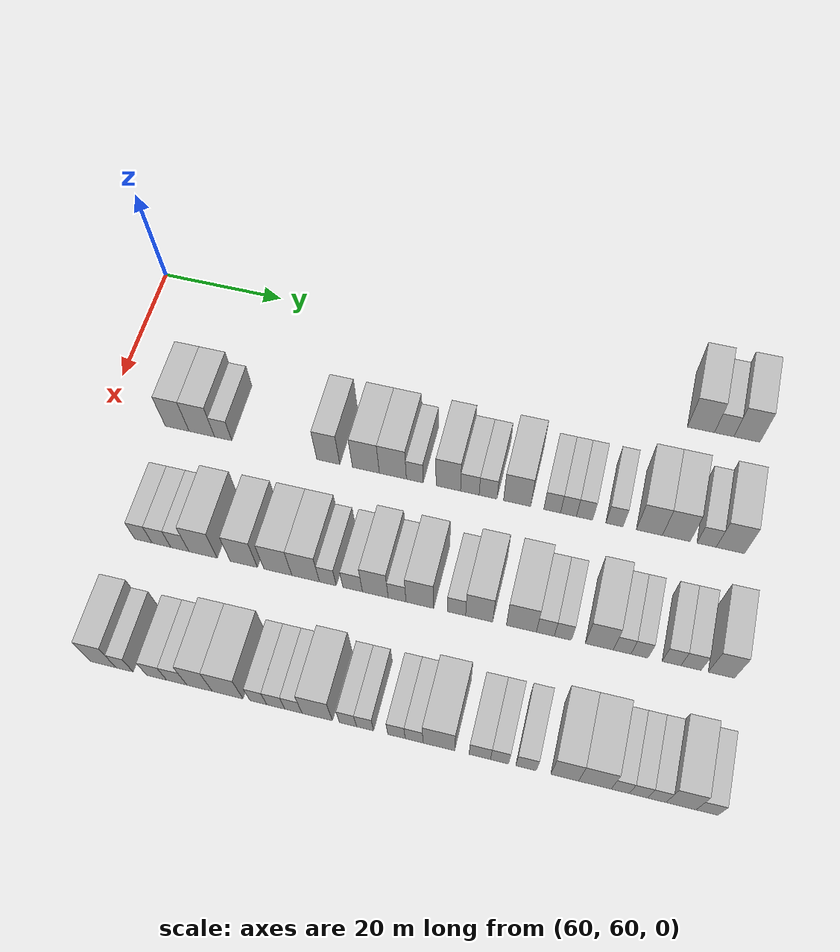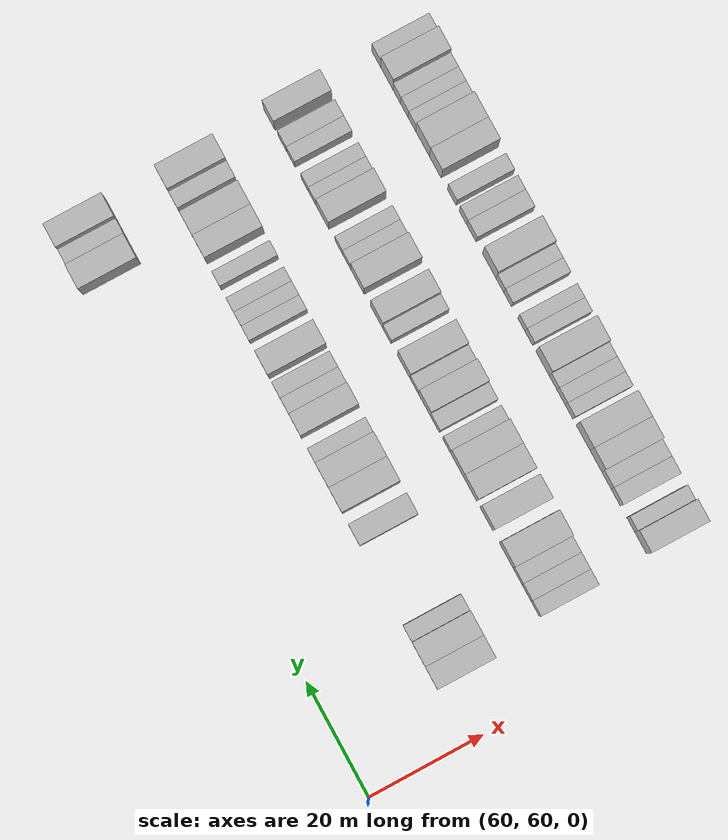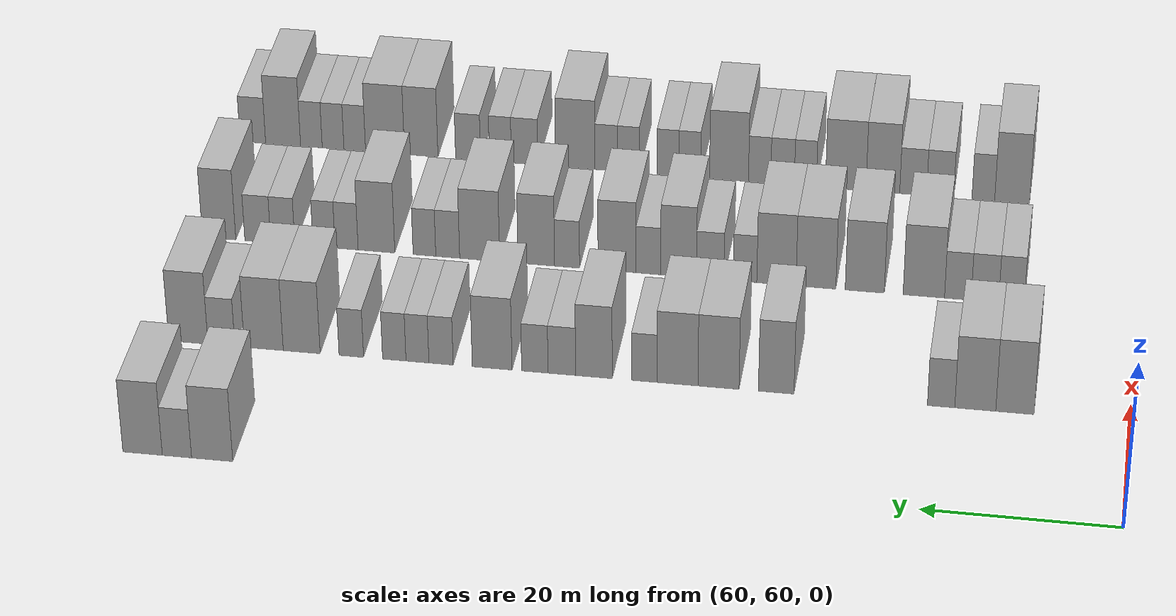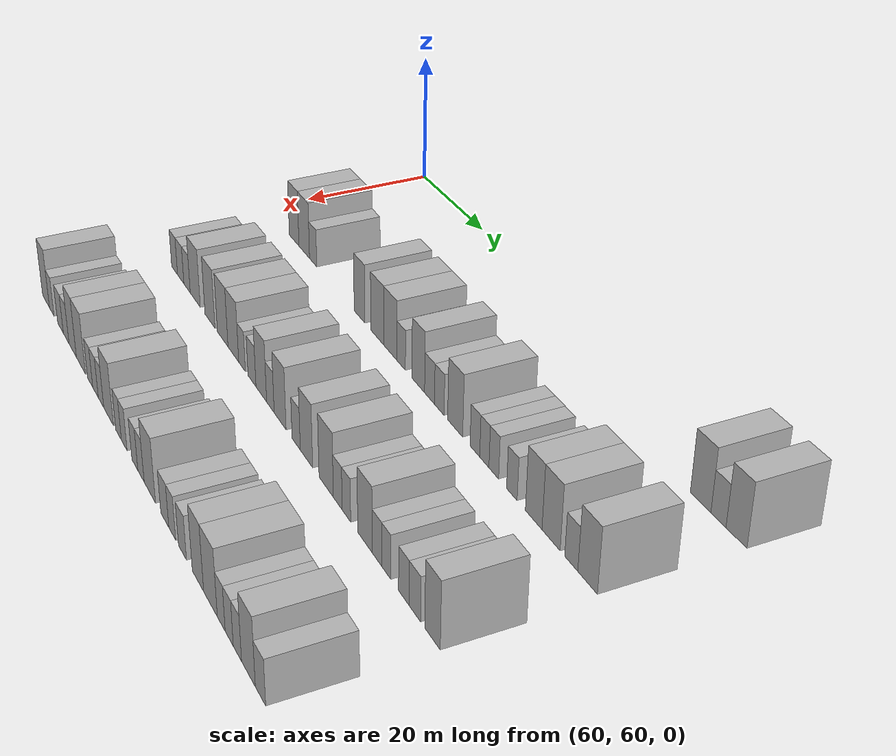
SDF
<sdf version="1.6">
 <world name="default">
  <model name="building_475">
   <static>1</static>
   <pose>63.0000 150.5492 0 0.000000 0.000000 0.000000</pose>
   <link name="link">
    <pose>0 0 4.50 0 0 0</pose>
    <collision name="collision"><geometry><box><size>10.0000 4.2063 9.0000</size></box></geometry></collision>
    <visual name="visual">
     <cast_shadows>0</cast_shadows>
     <geometry><box><size>10.0000 4.2063 9.0000</size></box></geometry>
     <material>
      <script>
       <uri>model://HANNAS_wall/materials/scripts</uri>
       <uri>model://HANNAS_wall/materials/textures</uri>
       <name>vrc/HANNAS_wall</name>
      </script>
     </material>
    </visual>
   </link>
  </model>
  <model name="building_476">
   <static>1</static>
   <pose>63.0000 154.1515 0 0.000000 0.000000 0.000000</pose>
   <link name="link">
    <pose>0 0 3.00 0 0 0</pose>
    <collision name="collision"><geometry><box><size>10.0000 2.9981 6.0000</size></box></geometry></collision>
    <visual name="visual">
     <cast_shadows>0</cast_shadows>
     <geometry><box><size>10.0000 2.9981 6.0000</size></box></geometry>
     <material>
      <script>
       <uri>model://HANNAS_wall/materials/scripts</uri>
       <uri>model://HANNAS_wall/materials/textures</uri>
       <name>vrc/HANNAS_wall</name>
      </script>
     </material>
    </visual>
   </link>
  </model>
  <model name="building_477">
   <static>1</static>
   <pose>63.0000 157.6719 0 0.000000 0.000000 0.000000</pose>
   <link name="link">
    <pose>0 0 4.50 0 0 0</pose>
    <collision name="collision"><geometry><box><size>10.0000 4.0427 9.0000</size></box></geometry></collision>
    <visual name="visual">
     <cast_shadows>0</cast_shadows>
     <geometry><box><size>10.0000 4.0427 9.0000</size></box></geometry>
     <material>
      <script>
       <uri>model://HANNAS_wall/materials/scripts</uri>
       <uri>model://HANNAS_wall/materials/textures</uri>
       <name>vrc/HANNAS_wall</name>
      </script>
     </material>
    </visual>
   </link>
  </model>
  <model name="building_619">
   <static>1</static>
   <pose>82.0000 71.6418 0 0.000000 0.000000 0.000000</pose>
   <link name="link">
    <pose>0 0 4.50 0 0 0</pose>
    <collision name="collision"><geometry><box><size>10.0000 3.8849 9.0000</size></box></geometry></collision>
    <visual name="visual">
     <cast_shadows>0</cast_shadows>
     <geometry><box><size>10.0000 3.8849 9.0000</size></box></geometry>
     <material>
      <script>
       <uri>model://HANNAS_wall/materials/scripts</uri>
       <uri>model://HANNAS_wall/materials/textures</uri>
       <name>vrc/HANNAS_wall</name>
      </script>
     </material>
    </visual>
   </link>
  </model>
  <model name="building_620">
   <static>1</static>
   <pose>82.0000 75.6646 0 0.000000 0.000000 0.000000</pose>
   <link name="link">
    <pose>0 0 4.50 0 0 0</pose>
    <collision name="collision"><geometry><box><size>10.0000 4.1608 9.0000</size></box></geometry></collision>
    <visual name="visual">
     <cast_shadows>0</cast_shadows>
     <geometry><box><size>10.0000 4.1608 9.0000</size></box></geometry>
     <material>
      <script>
       <uri>model://HANNAS_wall/materials/scripts</uri>
       <uri>model://HANNAS_wall/materials/textures</uri>
       <name>vrc/HANNAS_wall</name>
      </script>
     </material>
    </visual>
   </link>
  </model>
  <model name="building_621">
   <static>1</static>
   <pose>82.0000 79.1383 0 0.000000 0.000000 0.000000</pose>
   <link name="link">
    <pose>0 0 3.00 0 0 0</pose>
    <collision name="collision"><geometry><box><size>10.0000 2.7865 6.0000</size></box></geometry></collision>
    <visual name="visual">
     <cast_shadows>0</cast_shadows>
     <geometry><box><size>10.0000 2.7865 6.0000</size></box></geometry>
     <material>
      <script>
       <uri>model://HANNAS_wall/materials/scripts</uri>
       <uri>model://HANNAS_wall/materials/textures</uri>
       <name>vrc/HANNAS_wall</name>
      </script>
     </material>
    </visual>
   </link>
  </model>
  <model name="building_622">
   <static>1</static>
   <pose>82.0000 96.0127 0 0.000000 0.000000 0.000000</pose>
   <link name="link">
    <pose>0 0 4.50 0 0 0</pose>
    <collision name="collision"><geometry><box><size>10.0000 3.6541 9.0000</size></box></geometry></collision>
    <visual name="visual">
     <cast_shadows>0</cast_shadows>
     <geometry><box><size>10.0000 3.6541 9.0000</size></box></geometry>
     <material>
      <script>
       <uri>model://HANNAS_wall/materials/scripts</uri>
       <uri>model://HANNAS_wall/materials/textures</uri>
       <name>vrc/HANNAS_wall</name>
      </script>
     </material>
    </visual>
   </link>
  </model>
  <model name="building_623">
   <static>1</static>
   <pose>82.0000 101.9577 0 0.000000 0.000000 0.000000</pose>
   <link name="link">
    <pose>0 0 4.50 0 0 0</pose>
    <collision name="collision"><geometry><box><size>10.0000 4.2359 9.0000</size></box></geometry></collision>
    <visual name="visual">
     <cast_shadows>0</cast_shadows>
     <geometry><box><size>10.0000 4.2359 9.0000</size></box></geometry>
     <material>
      <script>
       <uri>model://HANNAS_wall/materials/scripts</uri>
       <uri>model://HANNAS_wall/materials/textures</uri>
       <name>vrc/HANNAS_wall</name>
      </script>
     </material>
    </visual>
   </link>
  </model>
  <model name="building_624">
   <static>1</static>
   <pose>82.0000 106.1976 0 0.000000 0.000000 0.000000</pose>
   <link name="link">
    <pose>0 0 4.50 0 0 0</pose>
    <collision name="collision"><geometry><box><size>10.0000 4.2441 9.0000</size></box></geometry></collision>
    <visual name="visual">
     <cast_shadows>0</cast_shadows>
     <geometry><box><size>10.0000 4.2441 9.0000</size></box></geometry>
     <material>
      <script>
       <uri>model://HANNAS_wall/materials/scripts</uri>
       <uri>model://HANNAS_wall/materials/textures</uri>
       <name>vrc/HANNAS_wall</name>
      </script>
     </material>
    </visual>
   </link>
  </model>
  <model name="building_625">
   <static>1</static>
   <pose>82.0000 109.6351 0 0.000000 0.000000 0.000000</pose>
   <link name="link">
    <pose>0 0 3.00 0 0 0</pose>
    <collision name="collision"><geometry><box><size>10.0000 2.6308 6.0000</size></box></geometry></collision>
    <visual name="visual">
     <cast_shadows>0</cast_shadows>
     <geometry><box><size>10.0000 2.6308 6.0000</size></box></geometry>
     <material>
      <script>
       <uri>model://HANNAS_wall/materials/scripts</uri>
       <uri>model://HANNAS_wall/materials/textures</uri>
       <name>vrc/HANNAS_wall</name>
      </script>
     </material>
    </visual>
   </link>
  </model>
  <model name="building_626">
   <static>1</static>
   <pose>82.0000 114.8485 0 0.000000 0.000000 0.000000</pose>
   <link name="link">
    <pose>0 0 4.50 0 0 0</pose>
    <collision name="collision"><geometry><box><size>10.0000 3.7960 9.0000</size></box></geometry></collision>
    <visual name="visual">
     <cast_shadows>0</cast_shadows>
     <geometry><box><size>10.0000 3.7960 9.0000</size></box></geometry>
     <material>
      <script>
       <uri>model://HANNAS_wall/materials/scripts</uri>
       <uri>model://HANNAS_wall/materials/textures</uri>
       <name>vrc/HANNAS_wall</name>
      </script>
     </material>
    </visual>
   </link>
  </model>
  <model name="building_627">
   <static>1</static>
   <pose>82.0000 118.1863 0 0.000000 0.000000 0.000000</pose>
   <link name="link">
    <pose>0 0 3.00 0 0 0</pose>
    <collision name="collision"><geometry><box><size>10.0000 2.8795 6.0000</size></box></geometry></collision>
    <visual name="visual">
     <cast_shadows>0</cast_shadows>
     <geometry><box><size>10.0000 2.8795 6.0000</size></box></geometry>
     <material>
      <script>
       <uri>model://HANNAS_wall/materials/scripts</uri>
       <uri>model://HANNAS_wall/materials/textures</uri>
       <name>vrc/HANNAS_wall</name>
      </script>
     </material>
    </visual>
   </link>
  </model>
  <model name="building_628">
   <static>1</static>
   <pose>82.0000 121.0032 0 0.000000 0.000000 0.000000</pose>
   <link name="link">
    <pose>0 0 3.00 0 0 0</pose>
    <collision name="collision"><geometry><box><size>10.0000 2.7544 6.0000</size></box></geometry></collision>
    <visual name="visual">
     <cast_shadows>0</cast_shadows>
     <geometry><box><size>10.0000 2.7544 6.0000</size></box></geometry>
     <material>
      <script>
       <uri>model://HANNAS_wall/materials/scripts</uri>
       <uri>model://HANNAS_wall/materials/textures</uri>
       <name>vrc/HANNAS_wall</name>
      </script>
     </material>
    </visual>
   </link>
  </model>
  <model name="building_629">
   <static>1</static>
   <pose>82.0000 125.4611 0 0.000000 0.000000 0.000000</pose>
   <link name="link">
    <pose>0 0 4.50 0 0 0</pose>
    <collision name="collision"><geometry><box><size>10.0000 4.1613 9.0000</size></box></geometry></collision>
    <visual name="visual">
     <cast_shadows>0</cast_shadows>
     <geometry><box><size>10.0000 4.1613 9.0000</size></box></geometry>
     <material>
      <script>
       <uri>model://HANNAS_wall/materials/scripts</uri>
       <uri>model://HANNAS_wall/materials/textures</uri>
       <name>vrc/HANNAS_wall</name>
      </script>
     </material>
    </visual>
   </link>
  </model>
  <model name="building_630">
   <static>1</static>
   <pose>82.0000 130.8156 0 0.000000 0.000000 0.000000</pose>
   <link name="link">
    <pose>0 0 3.00 0 0 0</pose>
    <collision name="collision"><geometry><box><size>10.0000 2.5477 6.0000</size></box></geometry></collision>
    <visual name="visual">
     <cast_shadows>0</cast_shadows>
     <geometry><box><size>10.0000 2.5477 6.0000</size></box></geometry>
     <material>
      <script>
       <uri>model://HANNAS_wall/materials/scripts</uri>
       <uri>model://HANNAS_wall/materials/textures</uri>
       <name>vrc/HANNAS_wall</name>
      </script>
     </material>
    </visual>
   </link>
  </model>
  <model name="building_631">
   <static>1</static>
   <pose>82.0000 133.2927 0 0.000000 0.000000 0.000000</pose>
   <link name="link">
    <pose>0 0 3.00 0 0 0</pose>
    <collision name="collision"><geometry><box><size>10.0000 2.4065 6.0000</size></box></geometry></collision>
    <visual name="visual">
     <cast_shadows>0</cast_shadows>
     <geometry><box><size>10.0000 2.4065 6.0000</size></box></geometry>
     <material>
      <script>
       <uri>model://HANNAS_wall/materials/scripts</uri>
       <uri>model://HANNAS_wall/materials/textures</uri>
       <name>vrc/HANNAS_wall</name>
      </script>
     </material>
    </visual>
   </link>
  </model>
  <model name="building_632">
   <static>1</static>
   <pose>82.0000 135.7270 0 0.000000 0.000000 0.000000</pose>
   <link name="link">
    <pose>0 0 3.00 0 0 0</pose>
    <collision name="collision"><geometry><box><size>10.0000 2.4622 6.0000</size></box></geometry></collision>
    <visual name="visual">
     <cast_shadows>0</cast_shadows>
     <geometry><box><size>10.0000 2.4622 6.0000</size></box></geometry>
     <material>
      <script>
       <uri>model://HANNAS_wall/materials/scripts</uri>
       <uri>model://HANNAS_wall/materials/textures</uri>
       <name>vrc/HANNAS_wall</name>
      </script>
     </material>
    </visual>
   </link>
  </model>
  <model name="building_633">
   <static>1</static>
   <pose>82.0000 140.2498 0 0.000000 0.000000 0.000000</pose>
   <link name="link">
    <pose>0 0 3.00 0 0 0</pose>
    <collision name="collision"><geometry><box><size>10.0000 2.5834 6.0000</size></box></geometry></collision>
    <visual name="visual">
     <cast_shadows>0</cast_shadows>
     <geometry><box><size>10.0000 2.5834 6.0000</size></box></geometry>
     <material>
      <script>
       <uri>model://HANNAS_wall/materials/scripts</uri>
       <uri>model://HANNAS_wall/materials/textures</uri>
       <name>vrc/HANNAS_wall</name>
      </script>
     </material>
    </visual>
   </link>
  </model>
  <model name="building_634">
   <static>1</static>
   <pose>82.0000 145.4933 0 0.000000 0.000000 0.000000</pose>
   <link name="link">
    <pose>0 0 4.50 0 0 0</pose>
    <collision name="collision"><geometry><box><size>10.0000 3.9036 9.0000</size></box></geometry></collision>
    <visual name="visual">
     <cast_shadows>0</cast_shadows>
     <geometry><box><size>10.0000 3.9036 9.0000</size></box></geometry>
     <material>
      <script>
       <uri>model://HANNAS_wall/materials/scripts</uri>
       <uri>model://HANNAS_wall/materials/textures</uri>
       <name>vrc/HANNAS_wall</name>
      </script>
     </material>
    </visual>
   </link>
  </model>
  <model name="building_635">
   <static>1</static>
   <pose>82.0000 149.5076 0 0.000000 0.000000 0.000000</pose>
   <link name="link">
    <pose>0 0 4.50 0 0 0</pose>
    <collision name="collision"><geometry><box><size>10.0000 4.1250 9.0000</size></box></geometry></collision>
    <visual name="visual">
     <cast_shadows>0</cast_shadows>
     <geometry><box><size>10.0000 4.1250 9.0000</size></box></geometry>
     <material>
      <script>
       <uri>model://HANNAS_wall/materials/scripts</uri>
       <uri>model://HANNAS_wall/materials/textures</uri>
       <name>vrc/HANNAS_wall</name>
      </script>
     </material>
    </visual>
   </link>
  </model>
  <model name="building_636">
   <static>1</static>
   <pose>82.0000 154.0002 0 0.000000 0.000000 0.000000</pose>
   <link name="link">
    <pose>0 0 3.00 0 0 0</pose>
    <collision name="collision"><geometry><box><size>10.0000 2.8602 6.0000</size></box></geometry></collision>
    <visual name="visual">
     <cast_shadows>0</cast_shadows>
     <geometry><box><size>10.0000 2.8602 6.0000</size></box></geometry>
     <material>
      <script>
       <uri>model://HANNAS_wall/materials/scripts</uri>
       <uri>model://HANNAS_wall/materials/textures</uri>
       <name>vrc/HANNAS_wall</name>
      </script>
     </material>
    </visual>
   </link>
  </model>
  <model name="building_637">
   <static>1</static>
   <pose>82.0000 157.5140 0 0.000000 0.000000 0.000000</pose>
   <link name="link">
    <pose>0 0 4.50 0 0 0</pose>
    <collision name="collision"><geometry><box><size>10.0000 4.1674 9.0000</size></box></geometry></collision>
    <visual name="visual">
     <cast_shadows>0</cast_shadows>
     <geometry><box><size>10.0000 4.1674 9.0000</size></box></geometry>
     <material>
      <script>
       <uri>model://HANNAS_wall/materials/scripts</uri>
       <uri>model://HANNAS_wall/materials/textures</uri>
       <name>vrc/HANNAS_wall</name>
      </script>
     </material>
    </visual>
   </link>
  </model>
  <model name="building_798">
   <static>1</static>
   <pose>101.0000 73.1687 0 0.000000 0.000000 0.000000</pose>
   <link name="link">
    <pose>0 0 3.00 0 0 0</pose>
    <collision name="collision"><geometry><box><size>10.0000 2.6980 6.0000</size></box></geometry></collision>
    <visual name="visual">
     <cast_shadows>0</cast_shadows>
     <geometry><box><size>10.0000 2.6980 6.0000</size></box></geometry>
     <material>
      <script>
       <uri>model://HANNAS_wall/materials/scripts</uri>
       <uri>model://HANNAS_wall/materials/textures</uri>
       <name>vrc/HANNAS_wall</name>
      </script>
     </material>
    </visual>
   </link>
  </model>
  <model name="building_799">
   <static>1</static>
   <pose>101.0000 75.9701 0 0.000000 0.000000 0.000000</pose>
   <link name="link">
    <pose>0 0 3.00 0 0 0</pose>
    <collision name="collision"><geometry><box><size>10.0000 2.9047 6.0000</size></box></geometry></collision>
    <visual name="visual">
     <cast_shadows>0</cast_shadows>
     <geometry><box><size>10.0000 2.9047 6.0000</size></box></geometry>
     <material>
      <script>
       <uri>model://HANNAS_wall/materials/scripts</uri>
       <uri>model://HANNAS_wall/materials/textures</uri>
       <name>vrc/HANNAS_wall</name>
      </script>
     </material>
    </visual>
   </link>
  </model>
  <model name="building_800">
   <static>1</static>
   <pose>101.0000 78.8299 0 0.000000 0.000000 0.000000</pose>
   <link name="link">
    <pose>0 0 3.00 0 0 0</pose>
    <collision name="collision"><geometry><box><size>10.0000 2.8150 6.0000</size></box></geometry></collision>
    <visual name="visual">
     <cast_shadows>0</cast_shadows>
     <geometry><box><size>10.0000 2.8150 6.0000</size></box></geometry>
     <material>
      <script>
       <uri>model://HANNAS_wall/materials/scripts</uri>
       <uri>model://HANNAS_wall/materials/textures</uri>
       <name>vrc/HANNAS_wall</name>
      </script>
     </material>
    </visual>
   </link>
  </model>
  <model name="building_801">
   <static>1</static>
   <pose>101.0000 82.4284 0 0.000000 0.000000 0.000000</pose>
   <link name="link">
    <pose>0 0 4.50 0 0 0</pose>
    <collision name="collision"><geometry><box><size>10.0000 4.3820 9.0000</size></box></geometry></collision>
    <visual name="visual">
     <cast_shadows>0</cast_shadows>
     <geometry><box><size>10.0000 4.3820 9.0000</size></box></geometry>
     <material>
      <script>
       <uri>model://HANNAS_wall/materials/scripts</uri>
       <uri>model://HANNAS_wall/materials/textures</uri>
       <name>vrc/HANNAS_wall</name>
      </script>
     </material>
    </visual>
   </link>
  </model>
  <model name="building_802">
   <static>1</static>
   <pose>101.0000 88.6964 0 0.000000 0.000000 0.000000</pose>
   <link name="link">
    <pose>0 0 4.50 0 0 0</pose>
    <collision name="collision"><geometry><box><size>10.0000 4.1540 9.0000</size></box></geometry></collision>
    <visual name="visual">
     <cast_shadows>0</cast_shadows>
     <geometry><box><size>10.0000 4.1540 9.0000</size></box></geometry>
     <material>
      <script>
       <uri>model://HANNAS_wall/materials/scripts</uri>
       <uri>model://HANNAS_wall/materials/textures</uri>
       <name>vrc/HANNAS_wall</name>
      </script>
     </material>
    </visual>
   </link>
  </model>
  <model name="building_803">
   <static>1</static>
   <pose>101.0000 93.8994 0 0.000000 0.000000 0.000000</pose>
   <link name="link">
    <pose>0 0 4.50 0 0 0</pose>
    <collision name="collision"><geometry><box><size>10.0000 4.2519 9.0000</size></box></geometry></collision>
    <visual name="visual">
     <cast_shadows>0</cast_shadows>
     <geometry><box><size>10.0000 4.2519 9.0000</size></box></geometry>
     <material>
      <script>
       <uri>model://HANNAS_wall/materials/scripts</uri>
       <uri>model://HANNAS_wall/materials/textures</uri>
       <name>vrc/HANNAS_wall</name>
      </script>
     </material>
    </visual>
   </link>
  </model>
  <model name="building_804">
   <static>1</static>
   <pose>101.0000 98.1186 0 0.000000 0.000000 0.000000</pose>
   <link name="link">
    <pose>0 0 4.50 0 0 0</pose>
    <collision name="collision"><geometry><box><size>10.0000 4.1866 9.0000</size></box></geometry></collision>
    <visual name="visual">
     <cast_shadows>0</cast_shadows>
     <geometry><box><size>10.0000 4.1866 9.0000</size></box></geometry>
     <material>
      <script>
       <uri>model://HANNAS_wall/materials/scripts</uri>
       <uri>model://HANNAS_wall/materials/textures</uri>
       <name>vrc/HANNAS_wall</name>
      </script>
     </material>
    </visual>
   </link>
  </model>
  <model name="building_805">
   <static>1</static>
   <pose>101.0000 101.4747 0 0.000000 0.000000 0.000000</pose>
   <link name="link">
    <pose>0 0 3.00 0 0 0</pose>
    <collision name="collision"><geometry><box><size>10.0000 2.5256 6.0000</size></box></geometry></collision>
    <visual name="visual">
     <cast_shadows>0</cast_shadows>
     <geometry><box><size>10.0000 2.5256 6.0000</size></box></geometry>
     <material>
      <script>
       <uri>model://HANNAS_wall/materials/scripts</uri>
       <uri>model://HANNAS_wall/materials/textures</uri>
       <name>vrc/HANNAS_wall</name>
      </script>
     </material>
    </visual>
   </link>
  </model>
  <model name="building_806">
   <static>1</static>
   <pose>101.0000 105.2041 0 0.000000 0.000000 0.000000</pose>
   <link name="link">
    <pose>0 0 3.00 0 0 0</pose>
    <collision name="collision"><geometry><box><size>10.0000 2.9330 6.0000</size></box></geometry></collision>
    <visual name="visual">
     <cast_shadows>0</cast_shadows>
     <geometry><box><size>10.0000 2.9330 6.0000</size></box></geometry>
     <material>
      <script>
       <uri>model://HANNAS_wall/materials/scripts</uri>
       <uri>model://HANNAS_wall/materials/textures</uri>
       <name>vrc/HANNAS_wall</name>
      </script>
     </material>
    </visual>
   </link>
  </model>
  <model name="building_807">
   <static>1</static>
   <pose>101.0000 108.5928 0 0.000000 0.000000 0.000000</pose>
   <link name="link">
    <pose>0 0 4.50 0 0 0</pose>
    <collision name="collision"><geometry><box><size>10.0000 3.8444 9.0000</size></box></geometry></collision>
    <visual name="visual">
     <cast_shadows>0</cast_shadows>
     <geometry><box><size>10.0000 3.8444 9.0000</size></box></geometry>
     <material>
      <script>
       <uri>model://HANNAS_wall/materials/scripts</uri>
       <uri>model://HANNAS_wall/materials/textures</uri>
       <name>vrc/HANNAS_wall</name>
      </script>
     </material>
    </visual>
   </link>
  </model>
  <model name="building_808">
   <static>1</static>
   <pose>101.0000 111.8437 0 0.000000 0.000000 0.000000</pose>
   <link name="link">
    <pose>0 0 3.00 0 0 0</pose>
    <collision name="collision"><geometry><box><size>10.0000 2.6576 6.0000</size></box></geometry></collision>
    <visual name="visual">
     <cast_shadows>0</cast_shadows>
     <geometry><box><size>10.0000 2.6576 6.0000</size></box></geometry>
     <material>
      <script>
       <uri>model://HANNAS_wall/materials/scripts</uri>
       <uri>model://HANNAS_wall/materials/textures</uri>
       <name>vrc/HANNAS_wall</name>
      </script>
     </material>
    </visual>
   </link>
  </model>
  <model name="building_809">
   <static>1</static>
   <pose>101.0000 115.2193 0 0.000000 0.000000 0.000000</pose>
   <link name="link">
    <pose>0 0 4.50 0 0 0</pose>
    <collision name="collision"><geometry><box><size>10.0000 4.0935 9.0000</size></box></geometry></collision>
    <visual name="visual">
     <cast_shadows>0</cast_shadows>
     <geometry><box><size>10.0000 4.0935 9.0000</size></box></geometry>
     <material>
      <script>
       <uri>model://HANNAS_wall/materials/scripts</uri>
       <uri>model://HANNAS_wall/materials/textures</uri>
       <name>vrc/HANNAS_wall</name>
      </script>
     </material>
    </visual>
   </link>
  </model>
  <model name="building_810">
   <static>1</static>
   <pose>101.0000 120.6168 0 0.000000 0.000000 0.000000</pose>
   <link name="link">
    <pose>0 0 3.00 0 0 0</pose>
    <collision name="collision"><geometry><box><size>10.0000 2.7015 6.0000</size></box></geometry></collision>
    <visual name="visual">
     <cast_shadows>0</cast_shadows>
     <geometry><box><size>10.0000 2.7015 6.0000</size></box></geometry>
     <material>
      <script>
       <uri>model://HANNAS_wall/materials/scripts</uri>
       <uri>model://HANNAS_wall/materials/textures</uri>
       <name>vrc/HANNAS_wall</name>
      </script>
     </material>
    </visual>
   </link>
  </model>
  <model name="building_811">
   <static>1</static>
   <pose>101.0000 123.9475 0 0.000000 0.000000 0.000000</pose>
   <link name="link">
    <pose>0 0 4.50 0 0 0</pose>
    <collision name="collision"><geometry><box><size>10.0000 3.9598 9.0000</size></box></geometry></collision>
    <visual name="visual">
     <cast_shadows>0</cast_shadows>
     <geometry><box><size>10.0000 3.9598 9.0000</size></box></geometry>
     <material>
      <script>
       <uri>model://HANNAS_wall/materials/scripts</uri>
       <uri>model://HANNAS_wall/materials/textures</uri>
       <name>vrc/HANNAS_wall</name>
      </script>
     </material>
    </visual>
   </link>
  </model>
  <model name="building_812">
   <static>1</static>
   <pose>101.0000 130.1002 0 0.000000 0.000000 0.000000</pose>
   <link name="link">
    <pose>0 0 4.50 0 0 0</pose>
    <collision name="collision"><geometry><box><size>10.0000 4.3456 9.0000</size></box></geometry></collision>
    <visual name="visual">
     <cast_shadows>0</cast_shadows>
     <geometry><box><size>10.0000 4.3456 9.0000</size></box></geometry>
     <material>
      <script>
       <uri>model://HANNAS_wall/materials/scripts</uri>
       <uri>model://HANNAS_wall/materials/textures</uri>
       <name>vrc/HANNAS_wall</name>
      </script>
     </material>
    </visual>
   </link>
  </model>
  <model name="building_813">
   <static>1</static>
   <pose>101.0000 133.5763 0 0.000000 0.000000 0.000000</pose>
   <link name="link">
    <pose>0 0 3.00 0 0 0</pose>
    <collision name="collision"><geometry><box><size>10.0000 2.6065 6.0000</size></box></geometry></collision>
    <visual name="visual">
     <cast_shadows>0</cast_shadows>
     <geometry><box><size>10.0000 2.6065 6.0000</size></box></geometry>
     <material>
      <script>
       <uri>model://HANNAS_wall/materials/scripts</uri>
       <uri>model://HANNAS_wall/materials/textures</uri>
       <name>vrc/HANNAS_wall</name>
      </script>
     </material>
    </visual>
   </link>
  </model>
  <model name="building_814">
   <static>1</static>
   <pose>101.0000 136.1153 0 0.000000 0.000000 0.000000</pose>
   <link name="link">
    <pose>0 0 3.00 0 0 0</pose>
    <collision name="collision"><geometry><box><size>10.0000 2.4715 6.0000</size></box></geometry></collision>
    <visual name="visual">
     <cast_shadows>0</cast_shadows>
     <geometry><box><size>10.0000 2.4715 6.0000</size></box></geometry>
     <material>
      <script>
       <uri>model://HANNAS_wall/materials/scripts</uri>
       <uri>model://HANNAS_wall/materials/textures</uri>
       <name>vrc/HANNAS_wall</name>
      </script>
     </material>
    </visual>
   </link>
  </model>
  <model name="building_815">
   <static>1</static>
   <pose>101.0000 141.3577 0 0.000000 0.000000 0.000000</pose>
   <link name="link">
    <pose>0 0 4.50 0 0 0</pose>
    <collision name="collision"><geometry><box><size>10.0000 4.0133 9.0000</size></box></geometry></collision>
    <visual name="visual">
     <cast_shadows>0</cast_shadows>
     <geometry><box><size>10.0000 4.0133 9.0000</size></box></geometry>
     <material>
      <script>
       <uri>model://HANNAS_wall/materials/scripts</uri>
       <uri>model://HANNAS_wall/materials/textures</uri>
       <name>vrc/HANNAS_wall</name>
      </script>
     </material>
    </visual>
   </link>
  </model>
  <model name="building_816">
   <static>1</static>
   <pose>101.0000 144.6255 0 0.000000 0.000000 0.000000</pose>
   <link name="link">
    <pose>0 0 3.00 0 0 0</pose>
    <collision name="collision"><geometry><box><size>10.0000 2.5224 6.0000</size></box></geometry></collision>
    <visual name="visual">
     <cast_shadows>0</cast_shadows>
     <geometry><box><size>10.0000 2.5224 6.0000</size></box></geometry>
     <material>
      <script>
       <uri>model://HANNAS_wall/materials/scripts</uri>
       <uri>model://HANNAS_wall/materials/textures</uri>
       <name>vrc/HANNAS_wall</name>
      </script>
     </material>
    </visual>
   </link>
  </model>
  <model name="building_817">
   <static>1</static>
   <pose>101.0000 147.0962 0 0.000000 0.000000 0.000000</pose>
   <link name="link">
    <pose>0 0 3.00 0 0 0</pose>
    <collision name="collision"><geometry><box><size>10.0000 2.4191 6.0000</size></box></geometry></collision>
    <visual name="visual">
     <cast_shadows>0</cast_shadows>
     <geometry><box><size>10.0000 2.4191 6.0000</size></box></geometry>
     <material>
      <script>
       <uri>model://HANNAS_wall/materials/scripts</uri>
       <uri>model://HANNAS_wall/materials/textures</uri>
       <name>vrc/HANNAS_wall</name>
      </script>
     </material>
    </visual>
   </link>
  </model>
  <model name="building_818">
   <static>1</static>
   <pose>101.0000 151.6326 0 0.000000 0.000000 0.000000</pose>
   <link name="link">
    <pose>0 0 3.00 0 0 0</pose>
    <collision name="collision"><geometry><box><size>10.0000 2.6538 6.0000</size></box></geometry></collision>
    <visual name="visual">
     <cast_shadows>0</cast_shadows>
     <geometry><box><size>10.0000 2.6538 6.0000</size></box></geometry>
     <material>
      <script>
       <uri>model://HANNAS_wall/materials/scripts</uri>
       <uri>model://HANNAS_wall/materials/textures</uri>
       <name>vrc/HANNAS_wall</name>
      </script>
     </material>
    </visual>
   </link>
  </model>
  <model name="building_819">
   <static>1</static>
   <pose>101.0000 154.3875 0 0.000000 0.000000 0.000000</pose>
   <link name="link">
    <pose>0 0 3.00 0 0 0</pose>
    <collision name="collision"><geometry><box><size>10.0000 2.8560 6.0000</size></box></geometry></collision>
    <visual name="visual">
     <cast_shadows>0</cast_shadows>
     <geometry><box><size>10.0000 2.8560 6.0000</size></box></geometry>
     <material>
      <script>
       <uri>model://HANNAS_wall/materials/scripts</uri>
       <uri>model://HANNAS_wall/materials/textures</uri>
       <name>vrc/HANNAS_wall</name>
      </script>
     </material>
    </visual>
   </link>
  </model>
  <model name="building_820">
   <static>1</static>
   <pose>101.0000 158.6538 0 0.000000 0.000000 0.000000</pose>
   <link name="link">
    <pose>0 0 4.50 0 0 0</pose>
    <collision name="collision"><geometry><box><size>10.0000 3.6766 9.0000</size></box></geometry></collision>
    <visual name="visual">
     <cast_shadows>0</cast_shadows>
     <geometry><box><size>10.0000 3.6766 9.0000</size></box></geometry>
     <material>
      <script>
       <uri>model://HANNAS_wall/materials/scripts</uri>
       <uri>model://HANNAS_wall/materials/textures</uri>
       <name>vrc/HANNAS_wall</name>
      </script>
     </material>
    </visual>
   </link>
  </model>
  <model name="building_970">
   <static>1</static>
   <pose>120.0000 74.2770 0 0.000000 0.000000 0.000000</pose>
   <link name="link">
    <pose>0 0 4.50 0 0 0</pose>
    <collision name="collision"><geometry><box><size>10.0000 3.8175 9.0000</size></box></geometry></collision>
    <visual name="visual">
     <cast_shadows>0</cast_shadows>
     <geometry><box><size>10.0000 3.8175 9.0000</size></box></geometry>
     <material>
      <script>
       <uri>model://HANNAS_wall/materials/scripts</uri>
       <uri>model://HANNAS_wall/materials/textures</uri>
       <name>vrc/HANNAS_wall</name>
      </script>
     </material>
    </visual>
   </link>
  </model>
  <model name="building_971">
   <static>1</static>
   <pose>120.0000 77.4311 0 0.000000 0.000000 0.000000</pose>
   <link name="link">
    <pose>0 0 3.00 0 0 0</pose>
    <collision name="collision"><geometry><box><size>10.0000 2.4908 6.0000</size></box></geometry></collision>
    <visual name="visual">
     <cast_shadows>0</cast_shadows>
     <geometry><box><size>10.0000 2.4908 6.0000</size></box></geometry>
     <material>
      <script>
       <uri>model://HANNAS_wall/materials/scripts</uri>
       <uri>model://HANNAS_wall/materials/textures</uri>
       <name>vrc/HANNAS_wall</name>
      </script>
     </material>
    </visual>
   </link>
  </model>
  <model name="building_972">
   <static>1</static>
   <pose>120.0000 82.1637 0 0.000000 0.000000 0.000000</pose>
   <link name="link">
    <pose>0 0 3.00 0 0 0</pose>
    <collision name="collision"><geometry><box><size>10.0000 2.9743 6.0000</size></box></geometry></collision>
    <visual name="visual">
     <cast_shadows>0</cast_shadows>
     <geometry><box><size>10.0000 2.9743 6.0000</size></box></geometry>
     <material>
      <script>
       <uri>model://HANNAS_wall/materials/scripts</uri>
       <uri>model://HANNAS_wall/materials/textures</uri>
       <name>vrc/HANNAS_wall</name>
      </script>
     </material>
    </visual>
   </link>
  </model>
  <model name="building_973">
   <static>1</static>
   <pose>120.0000 85.1309 0 0.000000 0.000000 0.000000</pose>
   <link name="link">
    <pose>0 0 3.00 0 0 0</pose>
    <collision name="collision"><geometry><box><size>10.0000 2.9602 6.0000</size></box></geometry></collision>
    <visual name="visual">
     <cast_shadows>0</cast_shadows>
     <geometry><box><size>10.0000 2.9602 6.0000</size></box></geometry>
     <material>
      <script>
       <uri>model://HANNAS_wall/materials/scripts</uri>
       <uri>model://HANNAS_wall/materials/textures</uri>
       <name>vrc/HANNAS_wall</name>
      </script>
     </material>
    </visual>
   </link>
  </model>
  <model name="building_974">
   <static>1</static>
   <pose>120.0000 88.4723 0 0.000000 0.000000 0.000000</pose>
   <link name="link">
    <pose>0 0 4.50 0 0 0</pose>
    <collision name="collision"><geometry><box><size>10.0000 3.7225 9.0000</size></box></geometry></collision>
    <visual name="visual">
     <cast_shadows>0</cast_shadows>
     <geometry><box><size>10.0000 3.7225 9.0000</size></box></geometry>
     <material>
      <script>
       <uri>model://HANNAS_wall/materials/scripts</uri>
       <uri>model://HANNAS_wall/materials/textures</uri>
       <name>vrc/HANNAS_wall</name>
      </script>
     </material>
    </visual>
   </link>
  </model>
  <model name="building_975">
   <static>1</static>
   <pose>120.0000 92.5708 0 0.000000 0.000000 0.000000</pose>
   <link name="link">
    <pose>0 0 4.50 0 0 0</pose>
    <collision name="collision"><geometry><box><size>10.0000 4.4744 9.0000</size></box></geometry></collision>
    <visual name="visual">
     <cast_shadows>0</cast_shadows>
     <geometry><box><size>10.0000 4.4744 9.0000</size></box></geometry>
     <material>
      <script>
       <uri>model://HANNAS_wall/materials/scripts</uri>
       <uri>model://HANNAS_wall/materials/textures</uri>
       <name>vrc/HANNAS_wall</name>
      </script>
     </material>
    </visual>
   </link>
  </model>
  <model name="building_976">
   <static>1</static>
   <pose>120.0000 97.0263 0 0.000000 0.000000 0.000000</pose>
   <link name="link">
    <pose>0 0 3.00 0 0 0</pose>
    <collision name="collision"><geometry><box><size>10.0000 2.4367 6.0000</size></box></geometry></collision>
    <visual name="visual">
     <cast_shadows>0</cast_shadows>
     <geometry><box><size>10.0000 2.4367 6.0000</size></box></geometry>
     <material>
      <script>
       <uri>model://HANNAS_wall/materials/scripts</uri>
       <uri>model://HANNAS_wall/materials/textures</uri>
       <name>vrc/HANNAS_wall</name>
      </script>
     </material>
    </visual>
   </link>
  </model>
  <model name="building_977">
   <static>1</static>
   <pose>120.0000 99.5518 0 0.000000 0.000000 0.000000</pose>
   <link name="link">
    <pose>0 0 3.00 0 0 0</pose>
    <collision name="collision"><geometry><box><size>10.0000 2.6142 6.0000</size></box></geometry></collision>
    <visual name="visual">
     <cast_shadows>0</cast_shadows>
     <geometry><box><size>10.0000 2.6142 6.0000</size></box></geometry>
     <material>
      <script>
       <uri>model://HANNAS_wall/materials/scripts</uri>
       <uri>model://HANNAS_wall/materials/textures</uri>
       <name>vrc/HANNAS_wall</name>
      </script>
     </material>
    </visual>
   </link>
  </model>
  <model name="building_978">
   <static>1</static>
   <pose>120.0000 102.0977 0 0.000000 0.000000 0.000000</pose>
   <link name="link">
    <pose>0 0 3.00 0 0 0</pose>
    <collision name="collision"><geometry><box><size>10.0000 2.4777 6.0000</size></box></geometry></collision>
    <visual name="visual">
     <cast_shadows>0</cast_shadows>
     <geometry><box><size>10.0000 2.4777 6.0000</size></box></geometry>
     <material>
      <script>
       <uri>model://HANNAS_wall/materials/scripts</uri>
       <uri>model://HANNAS_wall/materials/textures</uri>
       <name>vrc/HANNAS_wall</name>
      </script>
     </material>
    </visual>
   </link>
  </model>
  <model name="building_979">
   <static>1</static>
   <pose>120.0000 105.4991 0 0.000000 0.000000 0.000000</pose>
   <link name="link">
    <pose>0 0 4.50 0 0 0</pose>
    <collision name="collision"><geometry><box><size>10.0000 4.3252 9.0000</size></box></geometry></collision>
    <visual name="visual">
     <cast_shadows>0</cast_shadows>
     <geometry><box><size>10.0000 4.3252 9.0000</size></box></geometry>
     <material>
      <script>
       <uri>model://HANNAS_wall/materials/scripts</uri>
       <uri>model://HANNAS_wall/materials/textures</uri>
       <name>vrc/HANNAS_wall</name>
      </script>
     </material>
    </visual>
   </link>
  </model>
  <model name="building_980">
   <static>1</static>
   <pose>120.0000 109.8747 0 0.000000 0.000000 0.000000</pose>
   <link name="link">
    <pose>0 0 3.00 0 0 0</pose>
    <collision name="collision"><geometry><box><size>10.0000 2.4259 6.0000</size></box></geometry></collision>
    <visual name="visual">
     <cast_shadows>0</cast_shadows>
     <geometry><box><size>10.0000 2.4259 6.0000</size></box></geometry>
     <material>
      <script>
       <uri>model://HANNAS_wall/materials/scripts</uri>
       <uri>model://HANNAS_wall/materials/textures</uri>
       <name>vrc/HANNAS_wall</name>
      </script>
     </material>
    </visual>
   </link>
  </model>
  <model name="building_981">
   <static>1</static>
   <pose>120.0000 112.2956 0 0.000000 0.000000 0.000000</pose>
   <link name="link">
    <pose>0 0 3.00 0 0 0</pose>
    <collision name="collision"><geometry><box><size>10.0000 2.4159 6.0000</size></box></geometry></collision>
    <visual name="visual">
     <cast_shadows>0</cast_shadows>
     <geometry><box><size>10.0000 2.4159 6.0000</size></box></geometry>
     <material>
      <script>
       <uri>model://HANNAS_wall/materials/scripts</uri>
       <uri>model://HANNAS_wall/materials/textures</uri>
       <name>vrc/HANNAS_wall</name>
      </script>
     </material>
    </visual>
   </link>
  </model>
  <model name="building_982">
   <static>1</static>
   <pose>120.0000 116.7270 0 0.000000 0.000000 0.000000</pose>
   <link name="link">
    <pose>0 0 3.00 0 0 0</pose>
    <collision name="collision"><geometry><box><size>10.0000 2.4468 6.0000</size></box></geometry></collision>
    <visual name="visual">
     <cast_shadows>0</cast_shadows>
     <geometry><box><size>10.0000 2.4468 6.0000</size></box></geometry>
     <material>
      <script>
       <uri>model://HANNAS_wall/materials/scripts</uri>
       <uri>model://HANNAS_wall/materials/textures</uri>
       <name>vrc/HANNAS_wall</name>
      </script>
     </material>
    </visual>
   </link>
  </model>
  <model name="building_983">
   <static>1</static>
   <pose>120.0000 119.2065 0 0.000000 0.000000 0.000000</pose>
   <link name="link">
    <pose>0 0 3.00 0 0 0</pose>
    <collision name="collision"><geometry><box><size>10.0000 2.5122 6.0000</size></box></geometry></collision>
    <visual name="visual">
     <cast_shadows>0</cast_shadows>
     <geometry><box><size>10.0000 2.5122 6.0000</size></box></geometry>
     <material>
      <script>
       <uri>model://HANNAS_wall/materials/scripts</uri>
       <uri>model://HANNAS_wall/materials/textures</uri>
       <name>vrc/HANNAS_wall</name>
      </script>
     </material>
    </visual>
   </link>
  </model>
  <model name="building_984">
   <static>1</static>
   <pose>120.0000 122.6700 0 0.000000 0.000000 0.000000</pose>
   <link name="link">
    <pose>0 0 4.50 0 0 0</pose>
    <collision name="collision"><geometry><box><size>10.0000 4.4148 9.0000</size></box></geometry></collision>
    <visual name="visual">
     <cast_shadows>0</cast_shadows>
     <geometry><box><size>10.0000 4.4148 9.0000</size></box></geometry>
     <material>
      <script>
       <uri>model://HANNAS_wall/materials/scripts</uri>
       <uri>model://HANNAS_wall/materials/textures</uri>
       <name>vrc/HANNAS_wall</name>
      </script>
     </material>
    </visual>
   </link>
  </model>
  <model name="building_985">
   <static>1</static>
   <pose>120.0000 128.3671 0 0.000000 0.000000 0.000000</pose>
   <link name="link">
    <pose>0 0 3.00 0 0 0</pose>
    <collision name="collision"><geometry><box><size>10.0000 2.9794 6.0000</size></box></geometry></collision>
    <visual name="visual">
     <cast_shadows>0</cast_shadows>
     <geometry><box><size>10.0000 2.9794 6.0000</size></box></geometry>
     <material>
      <script>
       <uri>model://HANNAS_wall/materials/scripts</uri>
       <uri>model://HANNAS_wall/materials/textures</uri>
       <name>vrc/HANNAS_wall</name>
      </script>
     </material>
    </visual>
   </link>
  </model>
  <model name="building_986">
   <static>1</static>
   <pose>120.0000 131.0960 0 0.000000 0.000000 0.000000</pose>
   <link name="link">
    <pose>0 0 3.00 0 0 0</pose>
    <collision name="collision"><geometry><box><size>10.0000 2.4784 6.0000</size></box></geometry></collision>
    <visual name="visual">
     <cast_shadows>0</cast_shadows>
     <geometry><box><size>10.0000 2.4784 6.0000</size></box></geometry>
     <material>
      <script>
       <uri>model://HANNAS_wall/materials/scripts</uri>
       <uri>model://HANNAS_wall/materials/textures</uri>
       <name>vrc/HANNAS_wall</name>
      </script>
     </material>
    </visual>
   </link>
  </model>
  <model name="building_987">
   <static>1</static>
   <pose>120.0000 134.7399 0 0.000000 0.000000 0.000000</pose>
   <link name="link">
    <pose>0 0 3.00 0 0 0</pose>
    <collision name="collision"><geometry><box><size>10.0000 2.8094 6.0000</size></box></geometry></collision>
    <visual name="visual">
     <cast_shadows>0</cast_shadows>
     <geometry><box><size>10.0000 2.8094 6.0000</size></box></geometry>
     <material>
      <script>
       <uri>model://HANNAS_wall/materials/scripts</uri>
       <uri>model://HANNAS_wall/materials/textures</uri>
       <name>vrc/HANNAS_wall</name>
      </script>
     </material>
    </visual>
   </link>
  </model>
  <model name="building_988">
   <static>1</static>
   <pose>120.0000 140.0393 0 0.000000 0.000000 0.000000</pose>
   <link name="link">
    <pose>0 0 4.50 0 0 0</pose>
    <collision name="collision"><geometry><box><size>10.0000 3.7893 9.0000</size></box></geometry></collision>
    <visual name="visual">
     <cast_shadows>0</cast_shadows>
     <geometry><box><size>10.0000 3.7893 9.0000</size></box></geometry>
     <material>
      <script>
       <uri>model://HANNAS_wall/materials/scripts</uri>
       <uri>model://HANNAS_wall/materials/textures</uri>
       <name>vrc/HANNAS_wall</name>
      </script>
     </material>
    </visual>
   </link>
  </model>
  <model name="building_989">
   <static>1</static>
   <pose>120.0000 144.1452 0 0.000000 0.000000 0.000000</pose>
   <link name="link">
    <pose>0 0 4.50 0 0 0</pose>
    <collision name="collision"><geometry><box><size>10.0000 4.4224 9.0000</size></box></geometry></collision>
    <visual name="visual">
     <cast_shadows>0</cast_shadows>
     <geometry><box><size>10.0000 4.4224 9.0000</size></box></geometry>
     <material>
      <script>
       <uri>model://HANNAS_wall/materials/scripts</uri>
       <uri>model://HANNAS_wall/materials/textures</uri>
       <name>vrc/HANNAS_wall</name>
      </script>
     </material>
    </visual>
   </link>
  </model>
  <model name="building_990">
   <static>1</static>
   <pose>120.0000 147.5844 0 0.000000 0.000000 0.000000</pose>
   <link name="link">
    <pose>0 0 3.00 0 0 0</pose>
    <collision name="collision"><geometry><box><size>10.0000 2.4559 6.0000</size></box></geometry></collision>
    <visual name="visual">
     <cast_shadows>0</cast_shadows>
     <geometry><box><size>10.0000 2.4559 6.0000</size></box></geometry>
     <material>
      <script>
       <uri>model://HANNAS_wall/materials/scripts</uri>
       <uri>model://HANNAS_wall/materials/textures</uri>
       <name>vrc/HANNAS_wall</name>
      </script>
     </material>
    </visual>
   </link>
  </model>
  <model name="building_991">
   <static>1</static>
   <pose>120.0000 150.0483 0 0.000000 0.000000 0.000000</pose>
   <link name="link">
    <pose>0 0 3.00 0 0 0</pose>
    <collision name="collision"><geometry><box><size>10.0000 2.4720 6.0000</size></box></geometry></collision>
    <visual name="visual">
     <cast_shadows>0</cast_shadows>
     <geometry><box><size>10.0000 2.4720 6.0000</size></box></geometry>
     <material>
      <script>
       <uri>model://HANNAS_wall/materials/scripts</uri>
       <uri>model://HANNAS_wall/materials/textures</uri>
       <name>vrc/HANNAS_wall</name>
      </script>
     </material>
    </visual>
   </link>
  </model>
  <model name="building_992">
   <static>1</static>
   <pose>120.0000 152.5184 0 0.000000 0.000000 0.000000</pose>
   <link name="link">
    <pose>0 0 3.00 0 0 0</pose>
    <collision name="collision"><geometry><box><size>10.0000 2.4682 6.0000</size></box></geometry></collision>
    <visual name="visual">
     <cast_shadows>0</cast_shadows>
     <geometry><box><size>10.0000 2.4682 6.0000</size></box></geometry>
     <material>
      <script>
       <uri>model://HANNAS_wall/materials/scripts</uri>
       <uri>model://HANNAS_wall/materials/textures</uri>
       <name>vrc/HANNAS_wall</name>
      </script>
     </material>
    </visual>
   </link>
  </model>
  <model name="building_993">
   <static>1</static>
   <pose>120.0000 155.7504 0 0.000000 0.000000 0.000000</pose>
   <link name="link">
    <pose>0 0 4.50 0 0 0</pose>
    <collision name="collision"><geometry><box><size>10.0000 3.9957 9.0000</size></box></geometry></collision>
    <visual name="visual">
     <cast_shadows>0</cast_shadows>
     <geometry><box><size>10.0000 3.9957 9.0000</size></box></geometry>
     <material>
      <script>
       <uri>model://HANNAS_wall/materials/scripts</uri>
       <uri>model://HANNAS_wall/materials/textures</uri>
       <name>vrc/HANNAS_wall</name>
      </script>
     </material>
    </visual>
   </link>
  </model>
  <model name="building_994">
   <static>1</static>
   <pose>120.0000 159.2032 0 0.000000 0.000000 0.000000</pose>
   <link name="link">
    <pose>0 0 3.00 0 0 0</pose>
    <collision name="collision"><geometry><box><size>10.0000 2.9100 6.0000</size></box></geometry></collision>
    <visual name="visual">
     <cast_shadows>0</cast_shadows>
     <geometry><box><size>10.0000 2.9100 6.0000</size></box></geometry>
     <material>
      <script>
       <uri>model://HANNAS_wall/materials/scripts</uri>
       <uri>model://HANNAS_wall/materials/textures</uri>
       <name>vrc/HANNAS_wall</name>
      </script>
     </material>
    </visual>
   </link>
  </model>
 </world>
</sdf>
